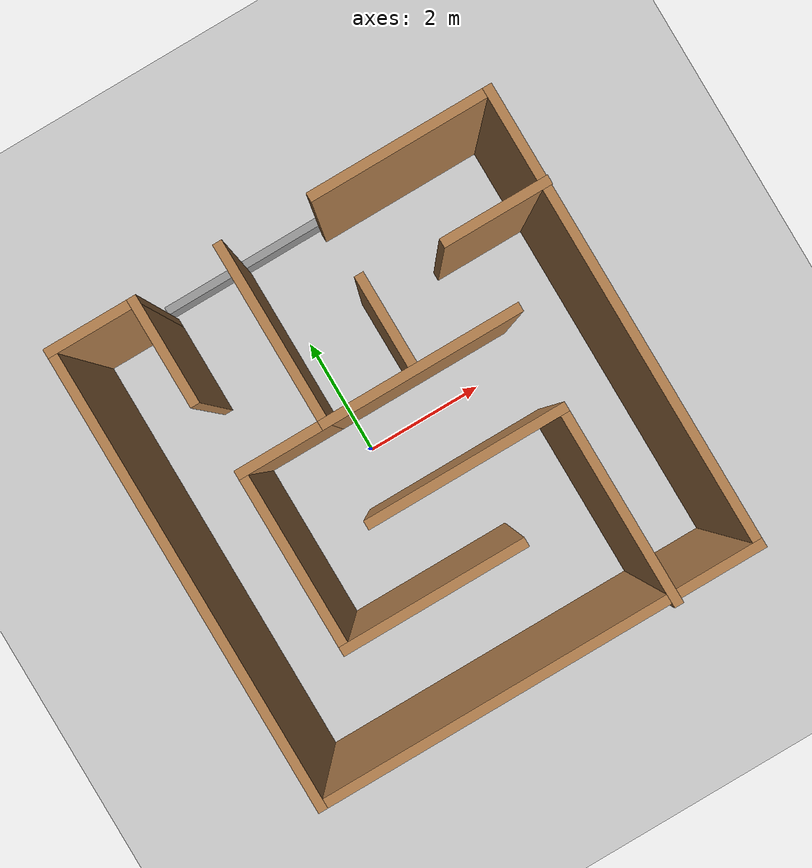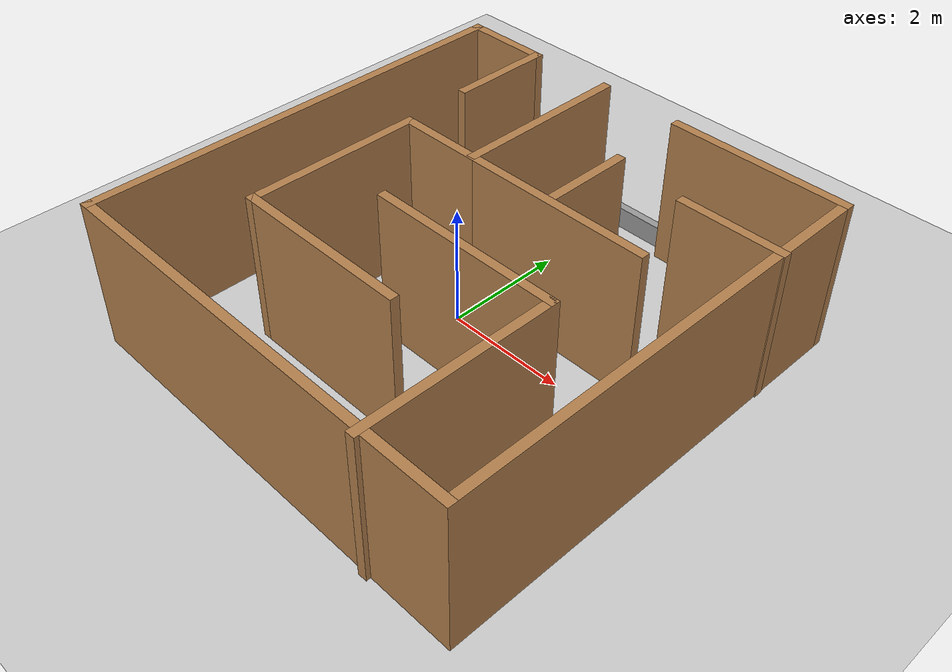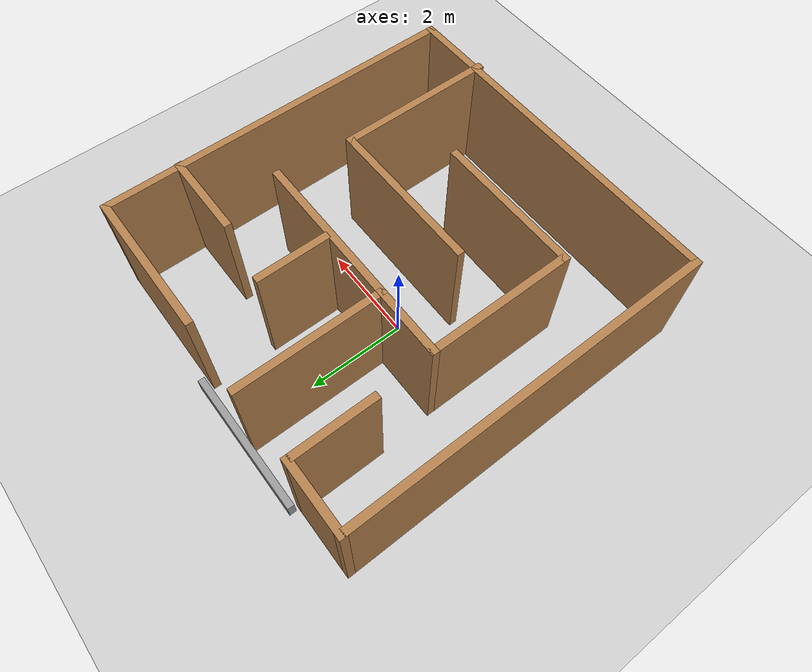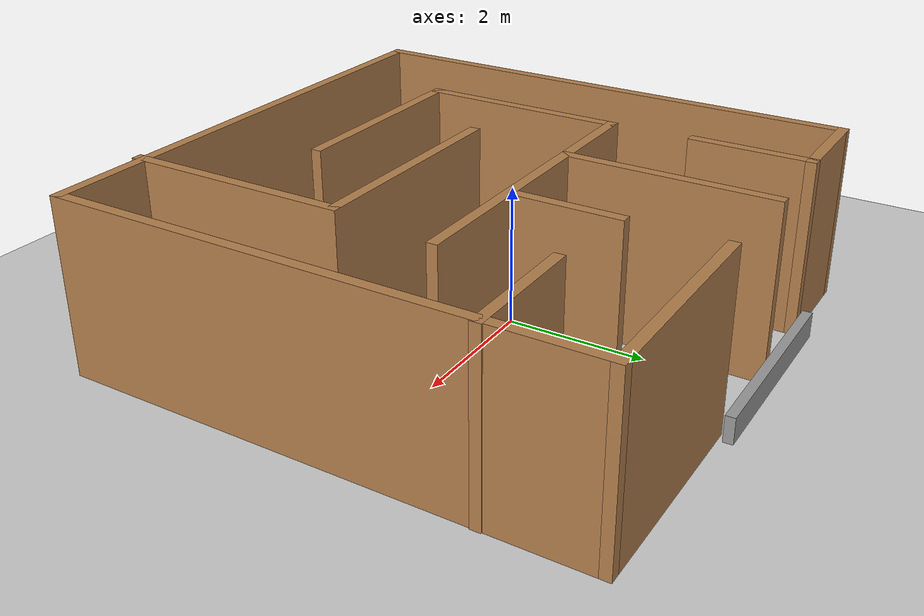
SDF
<sdf version="1.6">
 <world name="default">
  <light name="sun" type="directional">
   <pose>0 0 10 0 -0 0</pose>
   <diffuse>0.8 0.8 0.8 1</diffuse>
   <specular>0.2 0.2 0.2 1</specular>
   <attenuation>
    <range>1000</range>
    <constant>0.9</constant>
    <linear>0.01</linear>
    <quadratic>0.001</quadratic>
   </attenuation>
   <direction>-0.5 0.1 -0.9</direction>
  </light>
  <model name="ground_plane">
   <static>1</static>
   <link name="link">
    <collision name="collision">
     <geometry><plane><normal>0 0 1</normal><size>100 100</size></plane></geometry>
     <surface><friction><ode><mu>100</mu><mu2>50</mu2></ode></friction></surface>
    </collision>
    <visual name="visual">
     <cast_shadows>0</cast_shadows>
     <geometry><plane><normal>0 0 1</normal><size>100 100</size></plane></geometry>
     <material>
      <script><uri>file://media/materials/scripts/gazebo.material</uri><name>Gazebo/Grey</name></script>
     </material>
    </visual>
   </link>
  </model>
  <gravity>0 0 -9.8</gravity>
  <magnetic_field>6e-06 2.3e-05 -4.2e-05</magnetic_field>
  <atmosphere type="adiabatic"/>
  <physics name="default_physics" default="0" type="ode">
   <max_step_size>0.001</max_step_size>
   <real_time_factor>1</real_time_factor>
   <real_time_update_rate>1000</real_time_update_rate>
  </physics>
  <scene><ambient>0.4 0.4 0.4 1</ambient><background>0.7 0.7 0.7 1</background><shadows>1</shadows></scene>
  <audio><device>default</device></audio>
  <spherical_coordinates>
   <surface_model>EARTH_WGS84</surface_model>
   <latitude_deg>0</latitude_deg>
   <longitude_deg>0</longitude_deg>
   <elevation>0</elevation>
   <heading_deg>0</heading_deg>
  </spherical_coordinates>
  <model name="simple_maze">
   <pose>0.47526 -0.27988 0 0 -0 0</pose>
   <link name="Wall_0">
    <collision name="Wall_0_Collision">
     <geometry><box><size>1.75 0.15 2.5</size></box></geometry>
     <pose>0 0 1.25 0 -0 0</pose>
    </collision>
    <visual name="Wall_0_Visual">
     <pose>0 0 1.25 0 -0 0</pose>
     <geometry><box><size>1.75 0.15 2.5</size></box></geometry>
     <material>
      <script><uri>file://media/materials/scripts/gazebo.material</uri><name>Gazebo/Wood</name></script>
      <ambient>1 1 1 1</ambient>
     </material>
     <meta><layer>0</layer></meta>
    </visual>
    <pose>-2.2083 2.88899 0 0 -0 1.5708</pose>
   </link>
   <link name="Wall_1">
    <collision name="Wall_1_Collision">
     <geometry><box><size>1.5 0.15 2.5</size></box></geometry>
     <pose>0 0 1.25 0 -0 0</pose>
    </collision>
    <visual name="Wall_1_Visual">
     <pose>0 0 1.25 0 -0 0</pose>
     <geometry><box><size>1.5 0.15 2.5</size></box></geometry>
     <material>
      <script><uri>file://media/materials/scripts/gazebo.material</uri><name>Gazebo/Wood</name></script>
      <ambient>1 1 1 1</ambient>
     </material>
     <meta><layer>0</layer></meta>
    </visual>
    <pose>-2.8833 3.68899 0 0 -0 3.14159</pose>
   </link>
   <link name="Wall_11">
    <collision name="Wall_11_Collision">
     <geometry><box><size>3 0.15 2.5</size></box></geometry>
     <pose>0 0 1.25 0 -0 0</pose>
    </collision>
    <visual name="Wall_11_Visual">
     <pose>0 0 1.25 0 -0 0</pose>
     <geometry><box><size>3 0.15 2.5</size></box></geometry>
     <material>
      <script><uri>file://media/materials/scripts/gazebo.material</uri><name>Gazebo/Wood</name></script>
      <ambient>1 1 1 1</ambient>
     </material>
     <meta><layer>0</layer></meta>
    </visual>
    <pose>-0.716609 -1.96694 0 0 -0 0</pose>
   </link>
   <link name="Wall_13">
    <collision name="Wall_13_Collision">
     <geometry><box><size>3.25 0.15 2.5</size></box></geometry>
     <pose>0 0 1.25 0 -0 0</pose>
    </collision>
    <visual name="Wall_13_Visual">
     <pose>0 0 1.25 0 -0 0</pose>
     <geometry><box><size>3.25 0.15 2.5</size></box></geometry>
     <material>
      <script><uri>file://media/materials/scripts/gazebo.material</uri><name>Gazebo/Wood</name></script>
      <ambient>1 1 1 1</ambient>
     </material>
     <meta><layer>0</layer></meta>
    </visual>
    <pose>0.758391 0.883059 0 0 -0 0</pose>
   </link>
   <link name="Wall_15">
    <collision name="Wall_15_Collision">
     <geometry><box><size>1.5 0.15 2.5</size></box></geometry>
     <pose>0 0 1.25 0 -0 0</pose>
    </collision>
    <visual name="Wall_15_Visual">
     <pose>0 0 1.25 0 -0 0</pose>
     <geometry><box><size>1.5 0.15 2.5</size></box></geometry>
     <material>
      <script><uri>file://media/materials/scripts/gazebo.material</uri><name>Gazebo/Wood</name></script>
      <ambient>1 1 1 1</ambient>
     </material>
     <meta><layer>0</layer></meta>
    </visual>
    <pose>0.672861 1.67204 0 0 -0 -1.5708</pose>
   </link>
   <link name="Wall_17">
    <collision name="Wall_17_Collision">
     <geometry><box><size>1.75 0.15 2.5</size></box></geometry>
     <pose>0 0 1.25 0 -0 0</pose>
    </collision>
    <visual name="Wall_17_Visual">
     <pose>0 0 1.25 0 -0 0</pose>
     <geometry><box><size>1.75 0.15 2.5</size></box></geometry>
     <material>
      <script><uri>file://media/materials/scripts/gazebo.material</uri><name>Gazebo/Wood</name></script>
      <ambient>1 1 1 1</ambient>
     </material>
     <meta><layer>0</layer></meta>
    </visual>
    <pose>2.75831 2.19581 0 0 -0 0</pose>
   </link>
   <link name="Wall_19">
    <collision name="Wall_19_Collision">
     <geometry><box><size>3.25 0.15 2.5</size></box></geometry>
     <pose>0 0 1.25 0 -0 0</pose>
    </collision>
    <visual name="Wall_19_Visual">
     <pose>0 0 1.25 0 -0 0</pose>
     <geometry><box><size>3.25 0.15 2.5</size></box></geometry>
     <material>
      <script><uri>file://media/materials/scripts/gazebo.material</uri><name>Gazebo/Wood</name></script>
      <ambient>1 1 1 1</ambient>
     </material>
     <meta><layer>0</layer></meta>
    </visual>
    <pose>0.601735 -0.633059 0 0 -0 0</pose>
   </link>
   <link name="Wall_2">
    <collision name="Wall_2_Collision">
     <geometry><box><size>7.5 0.15 2.5</size></box></geometry>
     <pose>0 0 1.25 0 -0 0</pose>
    </collision>
    <visual name="Wall_2_Visual">
     <pose>0 0 1.25 0 -0 0</pose>
     <geometry><box><size>7.5 0.15 2.5</size></box></geometry>
     <material>
      <script><uri>file://media/materials/scripts/gazebo.material</uri><name>Gazebo/Wood</name></script>
      <ambient>1 1 1 1</ambient>
     </material>
     <meta><layer>0</layer></meta>
    </visual>
    <pose>-3.5583 0.013993 0 0 -0 -1.5708</pose>
   </link>
   <link name="Wall_20">
    <collision name="Wall_20_Collision">
     <geometry><box><size>3.25 0.15 2.5</size></box></geometry>
     <pose>0 0 1.25 0 -0 0</pose>
    </collision>
    <visual name="Wall_20_Visual">
     <pose>0 0 1.25 0 -0 0</pose>
     <geometry><box><size>3.25 0.15 2.5</size></box></geometry>
     <material>
      <script><uri>file://media/materials/scripts/gazebo.material</uri><name>Gazebo/Wood</name></script>
      <ambient>1 1 1 1</ambient>
     </material>
     <meta><layer>0</layer></meta>
    </visual>
    <pose>2.15173 -2.18306 0 0 -0 -1.5708</pose>
   </link>
   <link name="Wall_3">
    <collision name="Wall_3_Collision">
     <geometry><box><size>7.25 0.15 2.5</size></box></geometry>
     <pose>0 0 1.25 0 -0 0</pose>
    </collision>
    <visual name="Wall_3_Visual">
     <pose>0 0 1.25 0 -0 0</pose>
     <geometry><box><size>7.25 0.15 2.5</size></box></geometry>
     <material>
      <script><uri>file://media/materials/scripts/gazebo.material</uri><name>Gazebo/Wood</name></script>
      <ambient>1 1 1 1</ambient>
     </material>
     <meta><layer>0</layer></meta>
    </visual>
    <pose>-0.008304 -3.66101 0 0 -0 0</pose>
   </link>
   <link name="Wall_4">
    <collision name="Wall_4_Collision">
     <geometry><box><size>7.5 0.15 2.5</size></box></geometry>
     <pose>0 0 1.25 0 -0 0</pose>
    </collision>
    <visual name="Wall_4_Visual">
     <pose>0 0 1.25 0 -0 0</pose>
     <geometry><box><size>7.5 0.15 2.5</size></box></geometry>
     <material>
      <script><uri>file://media/materials/scripts/gazebo.material</uri><name>Gazebo/Wood</name></script>
      <ambient>1 1 1 1</ambient>
     </material>
     <meta><layer>0</layer></meta>
    </visual>
    <pose>3.5417 0.013993 0 0 -0 1.5708</pose>
   </link>
   <link name="Wall_5">
    <collision name="Wall_5_Collision">
     <geometry><box><size>3 0.15 2.5</size></box></geometry>
     <pose>0 0 1.25 0 -0 0</pose>
    </collision>
    <visual name="Wall_5_Visual">
     <pose>0 0 1.25 0 -0 0</pose>
     <geometry><box><size>3 0.15 2.5</size></box></geometry>
     <material>
      <script><uri>file://media/materials/scripts/gazebo.material</uri><name>Gazebo/Wood</name></script>
      <ambient>1 1 1 1</ambient>
     </material>
     <meta><layer>0</layer></meta>
    </visual>
    <pose>2.1167 3.68899 0 0 -0 3.14159</pose>
   </link>
   <link name="Wall_7">
    <collision name="Wall_7_Collision">
     <geometry><box><size>3 0.15 2.5</size></box></geometry>
     <pose>0 0 1.25 0 -0 0</pose>
    </collision>
    <visual name="Wall_7_Visual">
     <pose>0 0 1.25 0 -0 0</pose>
     <geometry><box><size>3 0.15 2.5</size></box></geometry>
     <material>
      <script><uri>file://media/materials/scripts/gazebo.material</uri><name>Gazebo/Wood</name></script>
      <ambient>1 1 1 1</ambient>
     </material>
     <meta><layer>0</layer></meta>
    </visual>
    <pose>-0.791609 2.30806 0 0 -0 -1.5708</pose>
   </link>
   <link name="Wall_8">
    <collision name="Wall_8_Collision">
     <geometry><box><size>1.5 0.15 2.5</size></box></geometry>
     <pose>0 0 1.25 0 -0 0</pose>
    </collision>
    <visual name="Wall_8_Visual">
     <pose>0 0 1.25 0 -0 0</pose>
     <geometry><box><size>1.5 0.15 2.5</size></box></geometry>
     <material>
      <script><uri>file://media/materials/scripts/gazebo.material</uri><name>Gazebo/Wood</name></script>
      <ambient>1 1 1 1</ambient>
     </material>
     <meta><layer>0</layer></meta>
    </visual>
    <pose>-1.46661 0.883059 0 0 -0 3.14159</pose>
   </link>
   <link name="Wall_9">
    <collision name="Wall_9_Collision">
     <geometry><box><size>3 0.15 2.5</size></box></geometry>
     <pose>0 0 1.25 0 -0 0</pose>
    </collision>
    <visual name="Wall_9_Visual">
     <pose>0 0 1.25 0 -0 0</pose>
     <geometry><box><size>3 0.15 2.5</size></box></geometry>
     <material>
      <script><uri>file://media/materials/scripts/gazebo.material</uri><name>Gazebo/Wood</name></script>
      <ambient>1 1 1 1</ambient>
     </material>
     <meta><layer>0</layer></meta>
    </visual>
    <pose>-2.14161 -0.541941 0 0 -0 -1.5708</pose>
   </link>
   <static>1</static>
  </model>
  <model name="unit_box">
   <pose>-0.243161 3.60752 0.185146 6e-06 0.000195 0.001765</pose>
   <link name="link">
    <inertial>
     <mass>1</mass>
     <inertia>
      <ixx>0.166667</ixx>
      <ixy>0</ixy>
      <ixz>0</ixz>
      <iyy>0.166667</iyy>
      <iyz>0</iyz>
      <izz>0.166667</izz>
     </inertia>
    </inertial>
    <collision name="collision"><geometry><box><size>2.94474 0.136444 0.370865</size></box></geometry></collision>
    <visual name="visual">
     <geometry><box><size>2.94474 0.136444 0.370865</size></box></geometry>
     <material>
      <script><name>Gazebo/Grey</name><uri>file://media/materials/scripts/gazebo.material</uri></script>
     </material>
    </visual>
   </link>
  </model>
 </world>
</sdf>
